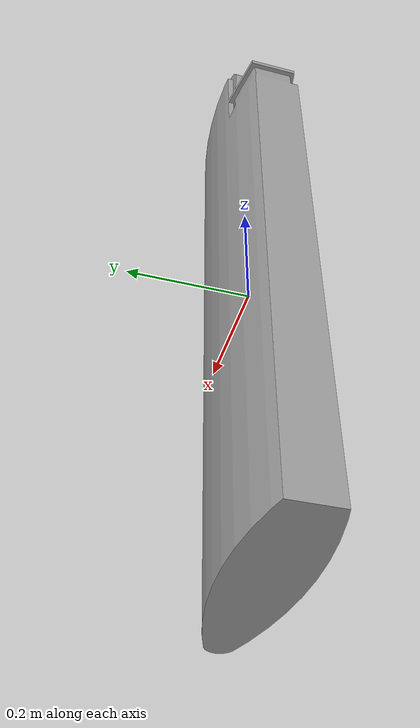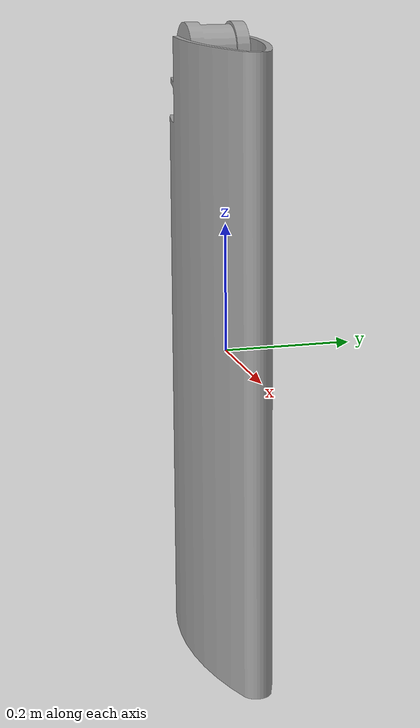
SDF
<?xml version="1.0" ?>
<sdf version="1.5">
  <model name='lighter3'>
    <pose>0 0 0 0 0 0</pose>
    <static>1</static>
    <link name='body'>
      <collision name="lighter3-coll">
        <pose>0 0 -0.5 0 0 0</pose>
        <geometry>
          <mesh>
            <uri>model://lighter3/meshes/lighter3.dae</uri>
          </mesh>
        </geometry>
      </collision>
      <visual name='lighter3'>
        <cast_shadows>1</cast_shadows>
        <pose>0 0 -0.5 0 0 0</pose>
        <geometry>
          <mesh>
            <uri>model://lighter3/meshes/lighter3.dae</uri>
          </mesh>
        </geometry>
      </visual>
      <velocity_decay>
        <linear>0</linear>
        <angular>0</angular>
      </velocity_decay>
      <self_collide>0</self_collide>
      <kinematic>0</kinematic>
      <gravity>1</gravity>
    </link>
  </model>

</sdf>
